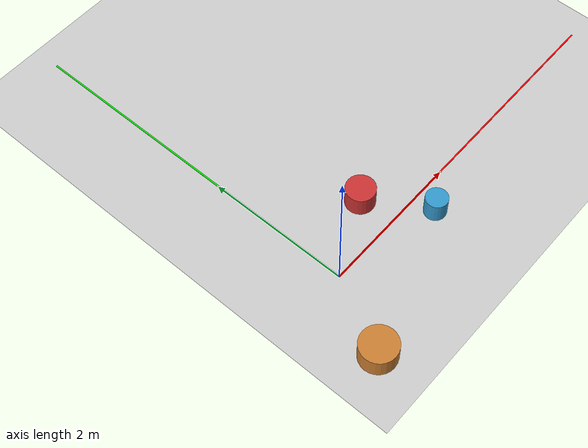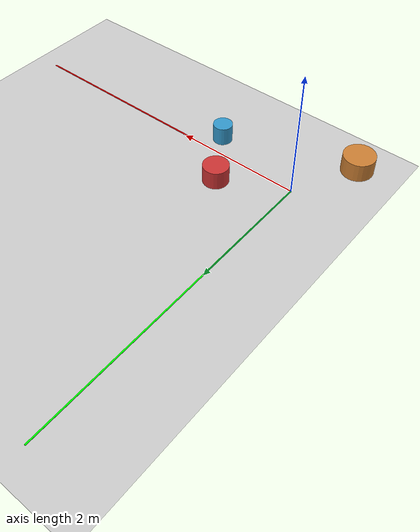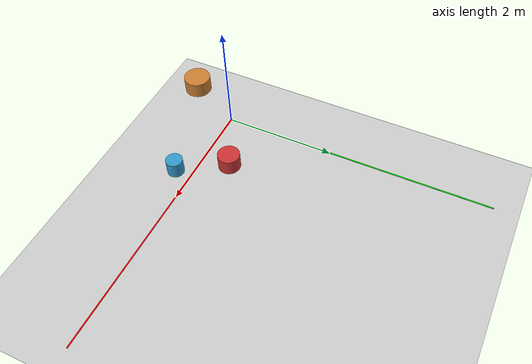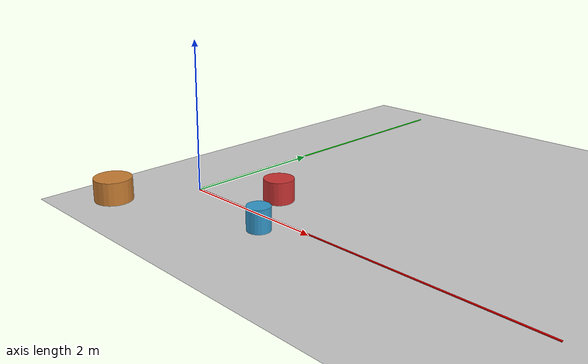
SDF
<?xml version="1.0" ?>
<sdf version="1.8">
  <world name="obstacle_world">

    <!-- Physics settings -->
    <physics name="1ms" type="ignored">
      <max_step_size>0.001</max_step_size>
      <real_time_factor>1.0</real_time_factor>
    </physics>

    <!-- Plugins -->
    <plugin filename="libgz-sim-physics-system.so"
            name="gz::sim::systems::Physics"/>
    <plugin filename="libgz-sim-user-commands-system.so"
            name="gz::sim::systems::UserCommands"/>
    <plugin filename="libgz-sim-scene-broadcaster-system.so"
            name="gz::sim::systems::SceneBroadcaster"/>

    <!-- Lighting -->
    <light type="directional" name="sun">
      <cast_shadows>true</cast_shadows>
      <pose>0 0 10 0 0 0</pose>
      <diffuse>0.8 0.8 0.8 1</diffuse>
      <specular>0.2 0.2 0.2 1</specular>
      <direction>-0.5 0.1 -0.9</direction>
    </light>

    <!-- Ground Plane -->
    <model name="ground_plane">
      <static>true</static>
      <link name="link">
        <collision name="collision">
          <geometry>
            <plane>
              <normal>0 0 1</normal>
              <size>20 20</size>
            </plane>
          </geometry>
        </collision>
        <visual name="visual">
          <geometry>
            <plane>
              <normal>0 0 1</normal>
              <size>20 20</size>
            </plane>
          </geometry>
          <material>
            <ambient>0.8 0.8 0.8 1</ambient>
            <diffuse>0.8 0.8 0.8 1</diffuse>
          </material>
        </visual>
      </link>
    </model>

    <!-- Obstacle 1: On the right loop of Figure-8 -->
    <model name="obstacle_1">
      <static>true</static>
      <pose>1.0 0.5 0.15 0 0 0</pose>
      <link name="link">
        <collision name="collision">
          <geometry>
            <cylinder>
              <radius>0.2</radius>
              <length>0.3</length>
            </cylinder>
          </geometry>
        </collision>
        <visual name="visual">
          <geometry>
            <cylinder>
              <radius>0.2</radius>
              <length>0.3</length>
            </cylinder>
          </geometry>
          <material>
            <ambient>0.8 0.2 0.2 1</ambient>
            <diffuse>0.8 0.2 0.2 1</diffuse>
          </material>
        </visual>
      </link>
    </model>

    <!-- Obstacle 2: On the left loop of Figure-8 -->
    <model name="obstacle_2">
      <static>true</static>
      <pose>-0.5 -1.0 0.15 0 0 0</pose>
      <link name="link">
        <collision name="collision">
          <geometry>
            <cylinder>
              <radius>0.25</radius>
              <length>0.3</length>
            </cylinder>
          </geometry>
        </collision>
        <visual name="visual">
          <geometry>
            <cylinder>
              <radius>0.25</radius>
              <length>0.3</length>
            </cylinder>
          </geometry>
          <material>
            <ambient>0.8 0.5 0.2 1</ambient>
            <diffuse>0.8 0.5 0.2 1</diffuse>
          </material>
        </visual>
      </link>
    </model>

    <!-- Obstacle 3: Near the crossing point -->
    <model name="obstacle_3">
      <static>true</static>
      <pose>1.5 -0.3 0.15 0 0 0</pose>
      <link name="link">
        <collision name="collision">
          <geometry>
            <cylinder>
              <radius>0.15</radius>
              <length>0.3</length>
            </cylinder>
          </geometry>
        </collision>
        <visual name="visual">
          <geometry>
            <cylinder>
              <radius>0.15</radius>
              <length>0.3</length>
            </cylinder>
          </geometry>
          <material>
            <ambient>0.2 0.6 0.8 1</ambient>
            <diffuse>0.2 0.6 0.8 1</diffuse>
          </material>
        </visual>
      </link>
    </model>

    <!-- Grid origin marker -->
    <model name="grid_origin">
      <static>true</static>
      <pose>0 0 0.01 0 0 0</pose>
      <link name="link">
        <visual name="x_axis">
          <geometry>
            <box><size>5 0.02 0.01</size></box>
          </geometry>
          <material>
            <ambient>1 0 0 1</ambient>
            <diffuse>1 0 0 1</diffuse>
          </material>
          <pose>2.5 0 0 0 0 0</pose>
        </visual>
        <visual name="y_axis">
          <geometry>
            <box><size>0.02 5 0.01</size></box>
          </geometry>
          <material>
            <ambient>0 1 0 1</ambient>
            <diffuse>0 1 0 1</diffuse>
          </material>
          <pose>0 2.5 0 0 0 0</pose>
        </visual>
      </link>
    </model>

  </world>
</sdf>
